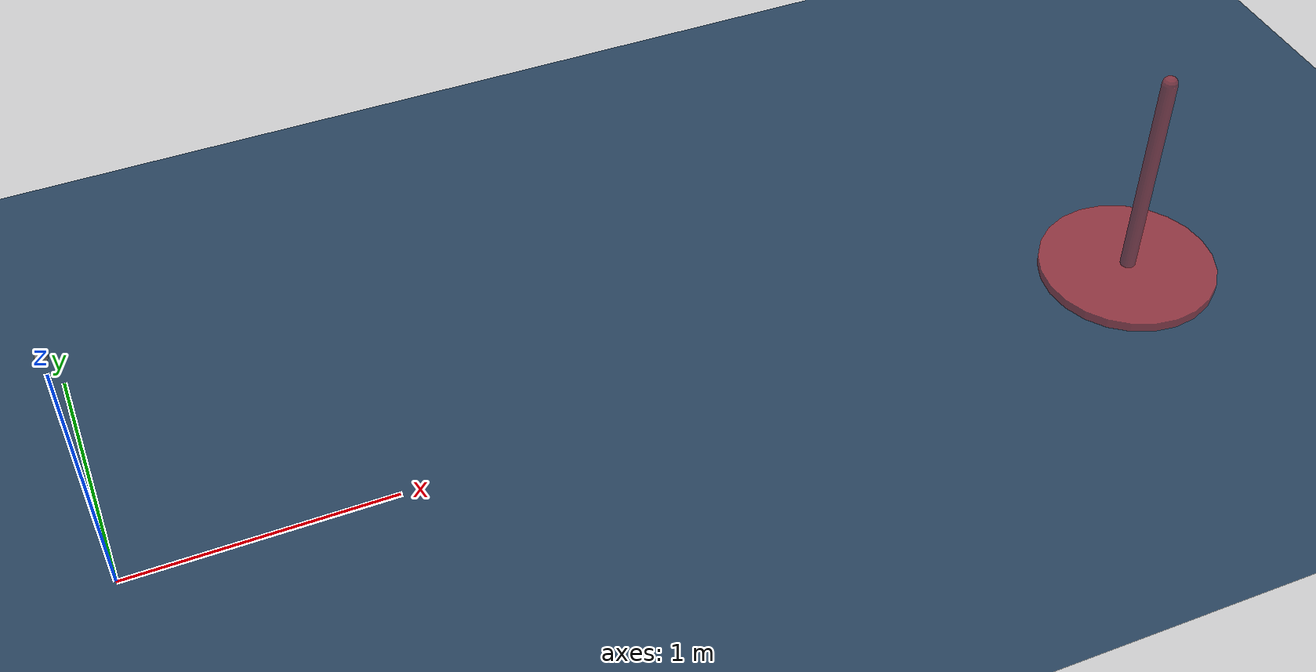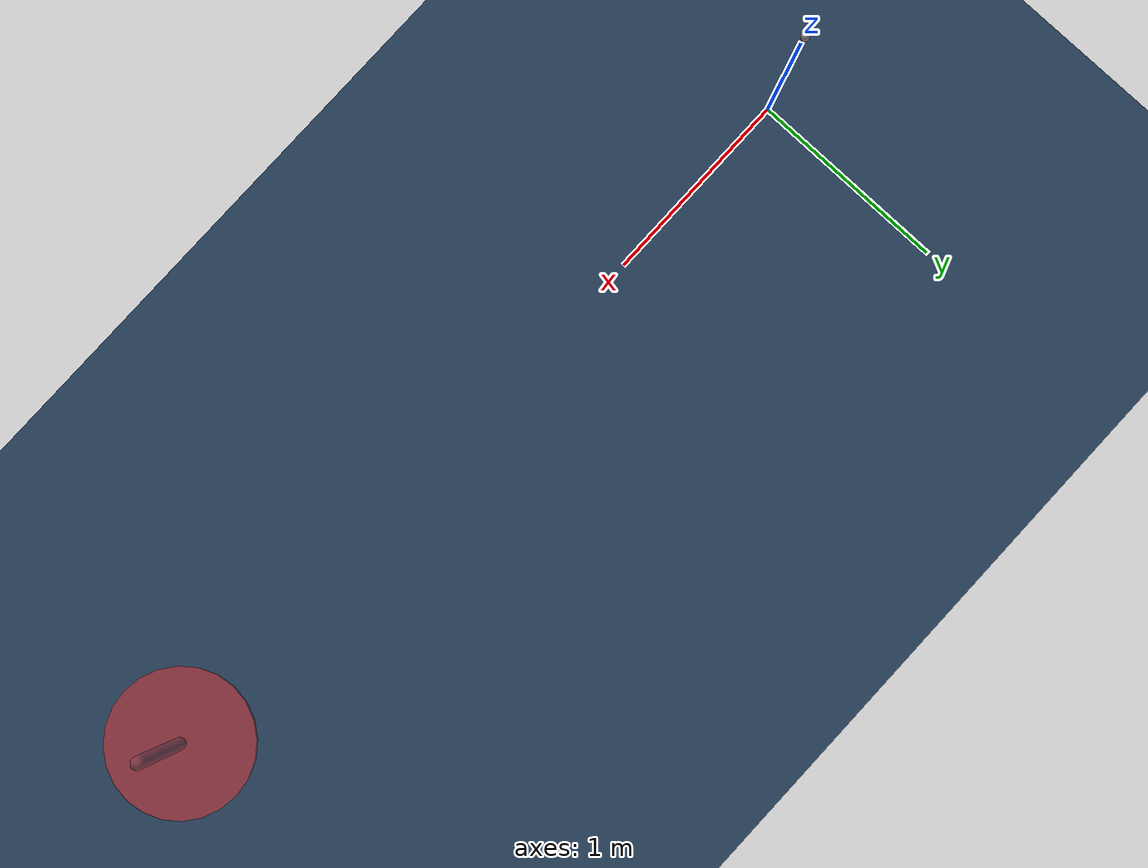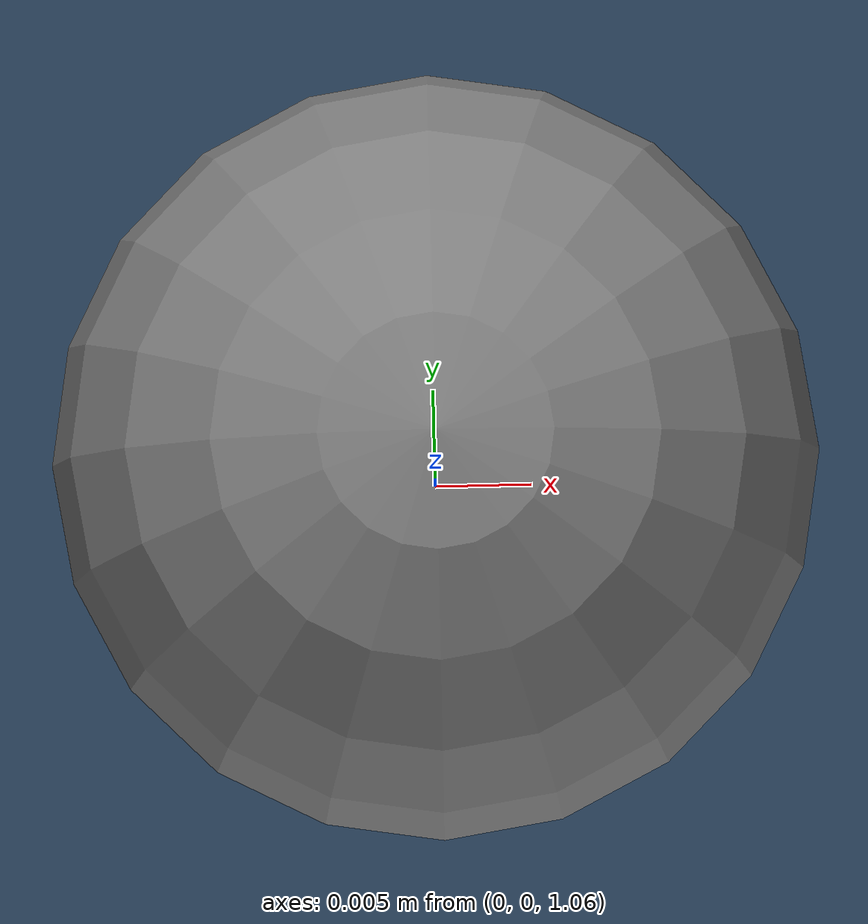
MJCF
<mujoco model="biped_target">
  <compiler angle="degree" inertiafromgeom="true"/>
  <option timestep="0.005" integrator="implicitfast" iterations="50" solver="Newton"/>

  <visual>
    <headlight diffuse="0.6 0.6 0.6" ambient="0.3 0.3 0.3" specular="0 0 0"/>
    <rgba haze="0.15 0.25 0.35 1"/>
    <global azimuth="140" elevation="-20" offwidth="1280" offheight="720"/>
  </visual>

  <asset>
    <texture type="skybox" builtin="gradient" rgb1="0.3 0.5 0.7" rgb2="0 0 0" width="512" height="3072"/>
    <texture name="groundplane" type="2d" builtin="checker" mark="edge" rgb1="0.2 0.3 0.4"
             rgb2="0.1 0.2 0.3" markrgb="0.8 0.8 0.8" width="300" height="300"/>
    <material name="groundplane" texture="groundplane" texuniform="true" texrepeat="5 5" reflectance="0.1"/>
    <material name="body" rgba="0.75 0.65 0.55 1"/>
  </asset>

  <default>
    <joint armature="0.02" damping="1.0" limited="true" stiffness="0"/>
    <geom condim="3" friction="0.9 0.1 0.1" density="1000" material="body"/>
    <motor ctrllimited="true" ctrlrange="-1 1"/>
  </default>

  <worldbody>
    <light pos="0 0 5" dir="0 0 -1" directional="true"/>
    <geom name="floor" type="plane" size="0 0 0.05" material="groundplane" condim="3"
          friction="1.0 0.1 0.1"/>

    <!-- Goal marker: moved from Python via data.mocap_pos -->
    <body name="target" mocap="true" pos="4 0 0.02">
      <geom name="target_geom" type="cylinder" size="0.35 0.02" rgba="0.9 0.2 0.2 0.55"
            contype="0" conaffinity="0" density="0"/>
      <geom name="target_pole" type="capsule" fromto="0 0 0 0 0 0.9" size="0.03"
            rgba="0.9 0.2 0.2 0.5" contype="0" conaffinity="0" density="0"/>
    </body>

    <body name="torso" pos="0 0 0.88">
      <freejoint name="root"/>
      <camera name="track" mode="trackcom" pos="0 -3.5 1.2" xyaxes="1 0 0 0 0.4 1"/>
      <site name="torso_site" pos="0 0 0.2" size="0.02"/>
      <site name="bone_pelvis" pos="0 0 0" size="0.025" group="4" rgba="1 0.8 0 1"/>
      <site name="bone_chest" pos="0 0 0.36" size="0.025" group="4" rgba="1 0.8 0 1"/>
      <site name="bone_head" pos="0 0 0.50" size="0.025" group="4" rgba="1 0.8 0 1"/>
      <geom group="3" name="pelvis" type="capsule" fromto="0 -0.09 0 0 0.09 0" size="0.085"/>
      <geom group="3" name="chest" type="capsule" fromto="0 0 0.06 0 0 0.36" size="0.09"/>
      <geom group="3" name="head" type="sphere" pos="0 0 0.50" size="0.09"/>

      <body name="thigh_l" pos="0 0.09 -0.02">
        <joint name="hip_z_l" axis="0 0 1" range="-45 45"/>
        <joint name="hip_x_l" axis="1 0 0" range="-30 15"/>
        <joint name="hip_y_l" axis="0 1 0" range="-110 45"/>
        <site name="bone_hip_l" pos="0 0 0" size="0.025" group="4" rgba="0.3 0.8 1 1"/>
        <geom group="3" name="thigh_l" type="capsule" fromto="0 0 0 0 0.01 -0.38" size="0.06"/>
        <body name="shin_l" pos="0 0.01 -0.40">
          <joint name="knee_l" axis="0 1 0" range="-150 -2"/>
          <site name="bone_knee_l" pos="0 0 0" size="0.025" group="4" rgba="0.3 0.8 1 1"/>
          <geom group="3" name="shin_l" type="capsule" fromto="0 0 0 0 0 -0.38" size="0.049"/>
          <body name="foot_l" pos="0 0 -0.40">
            <joint name="ankle_y_l" axis="0 1 0" range="-45 35"/>
            <joint name="ankle_x_l" axis="1 0 0" range="-25 25"/>
            <site name="bone_ankle_l" pos="0 0 0" size="0.025" group="4" rgba="0.3 0.8 1 1"/>
            <site name="bone_toe_l" pos="0.16 0 -0.035" size="0.02" group="4" rgba="0.3 0.8 1 1"/>
            <geom group="3" name="foot_l" type="box" pos="0.045 0 -0.035" size="0.115 0.05 0.03"
                  friction="1.2 0.1 0.1"/>
          </body>
        </body>
      </body>

      <body name="thigh_r" pos="0 -0.09 -0.02">
        <joint name="hip_z_r" axis="0 0 1" range="-45 45"/>
        <joint name="hip_x_r" axis="1 0 0" range="-15 30"/>
        <joint name="hip_y_r" axis="0 1 0" range="-110 45"/>
        <site name="bone_hip_r" pos="0 0 0" size="0.025" group="4" rgba="1 0.4 0.4 1"/>
        <geom group="3" name="thigh_r" type="capsule" fromto="0 0 0 0 -0.01 -0.38" size="0.06"/>
        <body name="shin_r" pos="0 -0.01 -0.40">
          <joint name="knee_r" axis="0 1 0" range="-150 -2"/>
          <site name="bone_knee_r" pos="0 0 0" size="0.025" group="4" rgba="1 0.4 0.4 1"/>
          <geom group="3" name="shin_r" type="capsule" fromto="0 0 0 0 0 -0.38" size="0.049"/>
          <body name="foot_r" pos="0 0 -0.40">
            <joint name="ankle_y_r" axis="0 1 0" range="-45 35"/>
            <joint name="ankle_x_r" axis="1 0 0" range="-25 25"/>
            <site name="bone_ankle_r" pos="0 0 0" size="0.025" group="4" rgba="1 0.4 0.4 1"/>
            <site name="bone_toe_r" pos="0.16 0 -0.035" size="0.02" group="4" rgba="1 0.4 0.4 1"/>
            <geom group="3" name="foot_r" type="box" pos="0.045 0 -0.035" size="0.115 0.05 0.03"
                  friction="1.2 0.1 0.1"/>
          </body>
        </body>
      </body>
    </body>
  </worldbody>

  <actuator>
    <motor name="hip_z_l"   joint="hip_z_l"   gear="60"/>
    <motor name="hip_x_l"   joint="hip_x_l"   gear="80"/>
    <motor name="hip_y_l"   joint="hip_y_l"   gear="130"/>
    <motor name="knee_l"    joint="knee_l"    gear="110"/>
    <motor name="ankle_y_l" joint="ankle_y_l" gear="70"/>
    <motor name="ankle_x_l" joint="ankle_x_l" gear="40"/>
    <motor name="hip_z_r"   joint="hip_z_r"   gear="60"/>
    <motor name="hip_x_r"   joint="hip_x_r"   gear="80"/>
    <motor name="hip_y_r"   joint="hip_y_r"   gear="130"/>
    <motor name="knee_r"    joint="knee_r"    gear="110"/>
    <motor name="ankle_y_r" joint="ankle_y_r" gear="70"/>
    <motor name="ankle_x_r" joint="ankle_x_r" gear="40"/>
  </actuator>
</mujoco>
